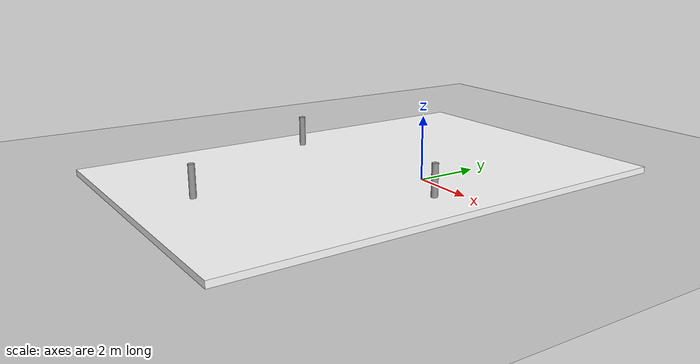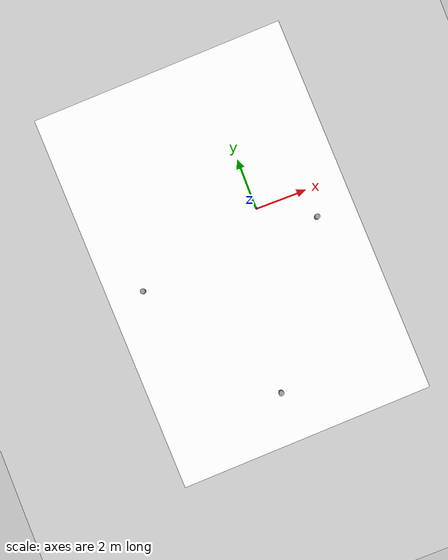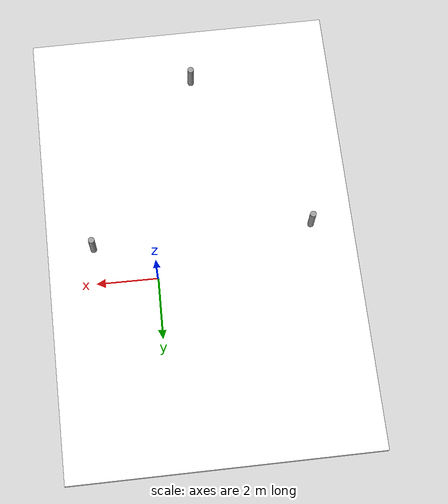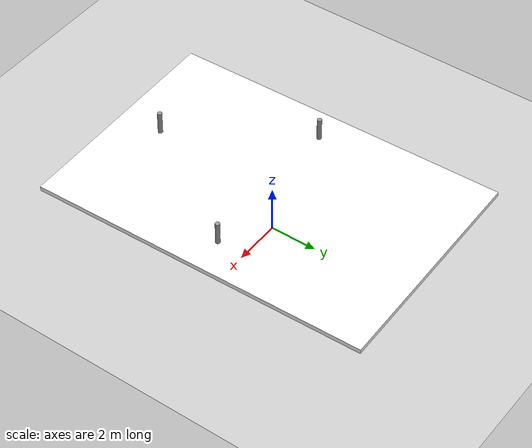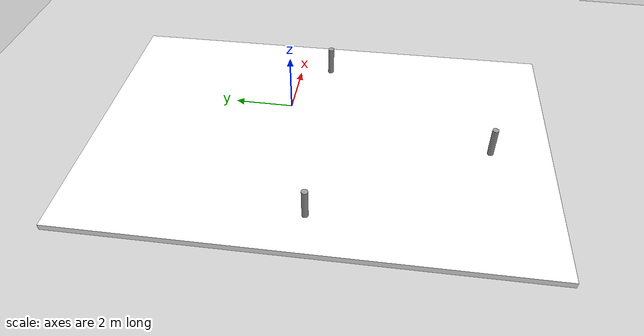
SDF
<sdf version="1.7">
 <world name="default">
  <light name="sun" type="directional">
   <pose>0 0 10 0 -0 0</pose>
   <diffuse>0.8 0.8 0.8 1</diffuse>
   <specular>0.2 0.2 0.2 1</specular>
   <attenuation>
    <range>1000</range>
    <constant>0.9</constant>
    <linear>0.01</linear>
    <quadratic>0.001</quadratic>
   </attenuation>
   <direction>-0.5 0.1 -0.9</direction>
   <spot><inner_angle>0</inner_angle><outer_angle>0</outer_angle><falloff>0</falloff></spot>
  </light>
  <model name="ground_plane">
   <static>1</static>
   <link name="link">
    <collision name="collision">
     <geometry><plane><normal>0 0 1</normal><size>100 100</size></plane></geometry>
     <surface><friction><ode><mu>100</mu><mu2>50</mu2></ode></friction></surface>
    </collision>
    <visual name="visual">
     <cast_shadows>0</cast_shadows>
     <geometry><plane><normal>0 0 1</normal><size>100 100</size></plane></geometry>
     <material>
      <script><uri>file://media/materials/scripts/gazebo.material</uri><name>Gazebo/Grey</name></script>
     </material>
    </visual>
   </link>
  </model>
  <gravity>0 0 -9.8</gravity>
  <magnetic_field>6e-06 2.3e-05 -4.2e-05</magnetic_field>
  <atmosphere type="adiabatic"/>
  <physics type="ode">
   <max_step_size>0.001</max_step_size>
   <real_time_factor>1</real_time_factor>
   <real_time_update_rate>1000</real_time_update_rate>
  </physics>
  <scene><ambient>0.4 0.4 0.4 1</ambient><background>0.7 0.7 0.7 1</background><shadows>1</shadows></scene>
  <spherical_coordinates>
   <surface_model>EARTH_WGS84</surface_model>
   <latitude_deg>0</latitude_deg>
   <longitude_deg>0</longitude_deg>
   <elevation>0</elevation>
   <heading_deg>0</heading_deg>
  </spherical_coordinates>
  <model name="basketball_field">
   <link name="link">
    <inertial>
     <mass>1</mass>
     <inertia>
      <ixx>0.166667</ixx>
      <ixy>0</ixy>
      <ixz>0</ixz>
      <iyy>0.166667</iyy>
      <iyz>0</iyz>
      <izz>0.166667</izz>
     </inertia>
    </inertial>
    <pose>3.37006 -7.9383 -0 0 -0 0</pose>
    <visual name="visual">
     <geometry><box><size>10 15 0.2</size></box></geometry>
     <material>
      <script><name>BasketballGround/Image</name><uri>file://media/materials/scripts/gazebo.material</uri></script>
      <shader type="pixel"><normal_map>__default__</normal_map></shader>
      <ambient>1 1 1 1</ambient>
      <diffuse>1 1 1 1</diffuse>
      <specular>0.03 0.03 0.03 1</specular>
      <emissive>0 0 0 1</emissive>
     </material>
    </visual>
    <collision name="collision">
     <geometry><box><size>10 15 0.2</size></box></geometry>
     <surface>
      <friction>
       <ode><mu>1</mu><mu2>1</mu2><fdir1>0 0 0</fdir1><slip1>0</slip1><slip2>0</slip2></ode>
       <torsional>
        <coefficient>1</coefficient>
        <patch_radius>0</patch_radius>
        <surface_radius>0</surface_radius>
        <use_patch_radius>1</use_patch_radius>
        <ode><slip>0</slip></ode>
       </torsional>
      </friction>
      <bounce><restitution_coefficient>0</restitution_coefficient><threshold>1e+06</threshold></bounce>
      <contact>
       <collide_without_contact>0</collide_without_contact>
       <collide_without_contact_bitmask>1</collide_without_contact_bitmask>
       <collide_bitmask>1</collide_bitmask>
       <ode>
        <soft_cfm>0</soft_cfm>
        <soft_erp>0.2</soft_erp>
        <kp>1e+13</kp>
        <kd>1</kd>
        <max_vel>0.01</max_vel>
        <min_depth>0</min_depth>
       </ode>
       <bullet>
        <split_impulse>1</split_impulse>
        <split_impulse_penetration_threshold>-0.01</split_impulse_penetration_threshold>
        <soft_cfm>0</soft_cfm>
        <soft_erp>0.2</soft_erp>
        <kp>1e+13</kp>
        <kd>1</kd>
       </bullet>
      </contact>
     </surface>
    </collision>
   </link>
   <static>0</static>
   <pose>-5.02992 6.61964 0.099764 -5.6e-05 0.000108 0.021604</pose>
  </model>
  <model name="location_cylinder">
   <link name="link">
    <inertial>
     <mass>1</mass>
     <inertia><ixx>0.145833</ixx><ixy>0</ixy><ixz>0</ixz><iyy>0.145833</iyy><iyz>0</iyz><izz>0.125</izz></inertia>
    </inertial>
    <visual name="visual">
     <geometry><cylinder><radius>0.1</radius><length>1</length></cylinder></geometry>
     <material>
      <script><name>Gazebo/Grey</name><uri>file://media/materials/scripts/gazebo.material</uri></script>
      <shader type="pixel"><normal_map>__default__</normal_map></shader>
      <ambient>0.3 0.3 0.3 1</ambient>
      <diffuse>0.7 0.7 0.7 1</diffuse>
      <specular>0.01 0.01 0.01 1</specular>
      <emissive>0 0 0 1</emissive>
     </material>
    </visual>
    <collision name="collision">
     <geometry><cylinder><radius>0.1</radius><length>1</length></cylinder></geometry>
     <surface>
      <friction>
       <ode><mu>1</mu><mu2>1</mu2><fdir1>0 0 0</fdir1><slip1>0</slip1><slip2>0</slip2></ode>
       <torsional>
        <coefficient>1</coefficient>
        <patch_radius>0</patch_radius>
        <surface_radius>0</surface_radius>
        <use_patch_radius>1</use_patch_radius>
        <ode><slip>0</slip></ode>
       </torsional>
      </friction>
      <bounce><restitution_coefficient>0</restitution_coefficient><threshold>1e+06</threshold></bounce>
      <contact>
       <collide_without_contact>0</collide_without_contact>
       <collide_without_contact_bitmask>1</collide_without_contact_bitmask>
       <collide_bitmask>1</collide_bitmask>
       <ode>
        <soft_cfm>0</soft_cfm>
        <soft_erp>0.2</soft_erp>
        <kp>1e+13</kp>
        <kd>1</kd>
        <max_vel>0.01</max_vel>
        <min_depth>0</min_depth>
       </ode>
       <bullet>
        <split_impulse>1</split_impulse>
        <split_impulse_penetration_threshold>-0.01</split_impulse_penetration_threshold>
        <soft_cfm>0</soft_cfm>
        <soft_erp>0.2</soft_erp>
        <kp>1e+13</kp>
        <kd>1</kd>
       </bullet>
      </contact>
     </surface>
    </collision>
   </link>
   <static>0</static>
   <pose>2.00686 -1.11621 0.697658 -0.001637 -1.3e-05 0.034334</pose>
  </model>
  <model name="location_cylinder_clone">
   <link name="link">
    <inertial>
     <mass>1</mass>
     <inertia><ixx>0.145833</ixx><ixy>0</ixy><ixz>0</ixz><iyy>0.145833</iyy><iyz>0</iyz><izz>0.125</izz></inertia>
    </inertial>
    <visual name="visual">
     <geometry><cylinder><radius>0.1</radius><length>1</length></cylinder></geometry>
     <material>
      <script><name>Gazebo/Grey</name><uri>file://media/materials/scripts/gazebo.material</uri></script>
      <shader type="pixel"><normal_map>__default__</normal_map></shader>
      <ambient>0.3 0.3 0.3 1</ambient>
      <diffuse>0.7 0.7 0.7 1</diffuse>
      <specular>0.01 0.01 0.01 1</specular>
      <emissive>0 0 0 1</emissive>
     </material>
    </visual>
    <collision name="collision">
     <geometry><cylinder><radius>0.1</radius><length>1</length></cylinder></geometry>
     <surface>
      <friction>
       <ode><mu>1</mu><mu2>1</mu2><fdir1>0 0 0</fdir1><slip1>0</slip1><slip2>0</slip2></ode>
       <torsional>
        <coefficient>1</coefficient>
        <patch_radius>0</patch_radius>
        <surface_radius>0</surface_radius>
        <use_patch_radius>1</use_patch_radius>
        <ode><slip>0</slip></ode>
       </torsional>
      </friction>
      <bounce><restitution_coefficient>0</restitution_coefficient><threshold>1e+06</threshold></bounce>
      <contact>
       <collide_without_contact>0</collide_without_contact>
       <collide_without_contact_bitmask>1</collide_without_contact_bitmask>
       <collide_bitmask>1</collide_bitmask>
       <ode>
        <soft_cfm>0</soft_cfm>
        <soft_erp>0.2</soft_erp>
        <kp>1e+13</kp>
        <kd>1</kd>
        <max_vel>0.01</max_vel>
        <min_depth>0</min_depth>
       </ode>
       <bullet>
        <split_impulse>1</split_impulse>
        <split_impulse_penetration_threshold>-0.01</split_impulse_penetration_threshold>
        <soft_cfm>0</soft_cfm>
        <soft_erp>0.2</soft_erp>
        <kp>1e+13</kp>
        <kd>1</kd>
       </bullet>
      </contact>
     </surface>
    </collision>
   </link>
   <static>0</static>
   <pose>-5.11577 -1.3675 0.697658 -0.001637 -1.3e-05 0.034334</pose>
  </model>
  <model name="location_cylinder_clone_clone">
   <link name="link">
    <inertial>
     <mass>1</mass>
     <inertia><ixx>0.145833</ixx><ixy>0</ixy><ixz>0</ixz><iyy>0.145833</iyy><iyz>0</iyz><izz>0.125</izz></inertia>
    </inertial>
    <visual name="visual">
     <geometry><cylinder><radius>0.1</radius><length>1</length></cylinder></geometry>
     <material>
      <script><name>Gazebo/Grey</name><uri>file://media/materials/scripts/gazebo.material</uri></script>
      <shader type="pixel"><normal_map>__default__</normal_map></shader>
      <ambient>0.3 0.3 0.3 1</ambient>
      <diffuse>0.7 0.7 0.7 1</diffuse>
      <specular>0.01 0.01 0.01 1</specular>
      <emissive>0 0 0 1</emissive>
     </material>
    </visual>
    <collision name="collision">
     <geometry><cylinder><radius>0.1</radius><length>1</length></cylinder></geometry>
     <surface>
      <friction>
       <ode><mu>1</mu><mu2>1</mu2><fdir1>0 0 0</fdir1><slip1>0</slip1><slip2>0</slip2></ode>
       <torsional>
        <coefficient>1</coefficient>
        <patch_radius>0</patch_radius>
        <surface_radius>0</surface_radius>
        <use_patch_radius>1</use_patch_radius>
        <ode><slip>0</slip></ode>
       </torsional>
      </friction>
      <bounce><restitution_coefficient>0</restitution_coefficient><threshold>1e+06</threshold></bounce>
      <contact>
       <collide_without_contact>0</collide_without_contact>
       <collide_without_contact_bitmask>1</collide_without_contact_bitmask>
       <collide_bitmask>1</collide_bitmask>
       <ode>
        <soft_cfm>0</soft_cfm>
        <soft_erp>0.2</soft_erp>
        <kp>1e+13</kp>
        <kd>1</kd>
        <max_vel>0.01</max_vel>
        <min_depth>0</min_depth>
       </ode>
       <bullet>
        <split_impulse>1</split_impulse>
        <split_impulse_penetration_threshold>-0.01</split_impulse_penetration_threshold>
        <soft_cfm>0</soft_cfm>
        <soft_erp>0.2</soft_erp>
        <kp>1e+13</kp>
        <kd>1</kd>
       </bullet>
      </contact>
     </surface>
    </collision>
   </link>
   <static>0</static>
   <pose>-1.64805 -6.80344 0.697658 -0.001637 -1.3e-05 0.034334</pose>
  </model>
 </world>
</sdf>
